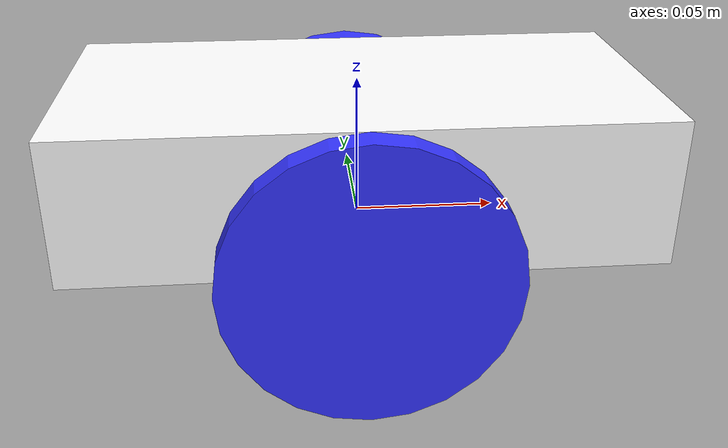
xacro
<?xml version="1.0"?>
<robot xmlns:xacro="http://www.ros.org/wiki/xacro" name="robot">
    <xacro:arg name="use_ros2_control" default="true" />
    <xacro:arg name="sim_mode" default="false" />

    <xacro:include filename="robot_core.xacro" />
    <xacro:include filename="ros2_control.xacro" />
</robot>

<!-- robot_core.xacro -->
<robot xmlns:xacro="http://www.ros.org/wiki/xacro">
    <xacro:include filename="materials.xacro" />
    <xacro:include filename="inertial_macros.xacro" />

    <link name="base_link">
    </link>

    <!-- BASE -->
    <joint name="base_to_chassis" type="fixed">
        <parent link="base_link" />
        <child link="chassis" />
        <origin xyz="-0.1 0 0" rpy="0 0 0" />
    </joint>

    <!-- CHASSIS -->
    <link name="chassis">
        <visual>
            <origin xyz="0.1 0 0.025" rpy="0 0 0" />
            <geometry>
                <box size="0.2 0.1 0.05" />
            </geometry>
            <material name="white" />
        </visual>
        <collision>
            <origin xyz="0.1 0 0.025" rpy="0 0 0" />
            <geometry>
                <box size="0.2 0.1 0.05" />
            </geometry>
        </collision>
        <xacro:inertial_box mass="0.5" x="0.2" y="0.1" z="0.05">
            <origin xyz="0.1 0 0.025" rpy="0 0 0" />
        </xacro:inertial_box>
    </link>

    <!-- LEFT WHEEL -->
    <joint name="left_wheel_joint" type="continuous">
        <parent link="base_link" />
        <child link="left_wheel" />
        <origin xyz="0 0.05 0" rpy="${-pi/2} 0 0" />
        <axis xyz="0 0 1" />
    </joint>
    <link name="left_wheel">
        <visual>
            <geometry>
                <cylinder radius="0.05" length="0.02" />
            </geometry>
            <material name="blue" />
        </visual>
        <collision>
            <geometry>
                <cylinder radius="0.05" length="0.02" />
            </geometry>
        </collision>
        <xacro:inertial_cylinder mass="0.1" radius="0.05" length="0.02">
            <origin xyz="0 0 0" rpy="0 0 0" />
        </xacro:inertial_cylinder>
    </link>
    <!-- RIGHT WHEEL -->
    <joint name="right_wheel_joint" type="continuous">
        <parent link="base_link" />
        <child link="right_wheel" />
        <origin xyz="0 -0.05 0" rpy="${pi/2} 0 0" />
        <axis xyz="0 0 -1" />
    </joint>
    <link name="right_wheel">
        <visual>
            <geometry>
                <cylinder radius="0.05" length="0.02" />
            </geometry>
            <material name="blue" />
        </visual>
        <collision>
            <geometry>
                <cylinder radius="0.05" length="0.02" />
            </geometry>
        </collision>
        <xacro:inertial_cylinder mass="0.1" radius="0.05" length="0.02">
            <origin xyz="0 0 0" rpy="0 0 0" />
        </xacro:inertial_cylinder>
    </link>

    <!-- CASTER WHEELS -->
    <joint name="front_caster_wheel_joint" type="fixed">
        <parent link="chassis" />
        <child link="front_caster_wheel" />
        <origin xyz="0.18 0 0" rpy="0 0 0" />
    </joint>
    <link name="front_caster_wheel">
        <visual>
            <geometry>
                <sphere radius="0.0125" />
            </geometry>
            <material name="black" />
        </visual>
        <collision>
            <geometry>
                <sphere radius="0.0125" />
            </geometry>
        </collision>
        <xacro:inertial_sphere mass="0.05" radius="0.0125">
            <origin xyz="0 0 0" rpy="0 0 0" />
        </xacro:inertial_sphere>
    </link>
    <joint name="rear_caster_wheel_joint" type="fixed">
        <parent link="chassis" />
        <child link="rear_caster_wheel" />
        <origin xyz="0.02 0 0" rpy="0 0 0" />
    </joint>
    <link name="rear_caster_wheel">
        <visual>
            <geometry>
                <sphere radius="0.0125" />
            </geometry>
            <material name="black" />
        </visual>
        <collision>
            <geometry>
                <sphere radius="0.0125" />
            </geometry>
        </collision>
        <xacro:inertial_sphere mass="0.05" radius="0.0125">
            <origin xyz="0 0 0" rpy="0 0 0" />
        </xacro:inertial_sphere>
    </link>
    <gazebo reference="front_caster_wheel">
        <mu1 value="0.001" />
        <mu2 value="0.001" />
    </gazebo>
    <gazebo reference="rear_caster_wheel">
        <mu1 value="0.001" />
        <mu2 value="0.001" />
    </gazebo>
</robot>

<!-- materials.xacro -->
<robot xmlns:xacro="http://www.ros.org/wiki/xacro">
    <material name="white">
        <color rgba="1.0 1.0 1.0 1.0" />
    </material>
    <material name="black">
        <color rgba="0.0 0.0 0.0 1.0" />
    </material>
    <material name="orange">
        <color rgba="1.0 0.3 0.1 1.0" />
    </material>
    <material name="blue">
        <color rgba="0.2 0.2 1.0 1.0" />
    </material>
</robot>

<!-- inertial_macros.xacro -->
<robot xmlns:xacro="http://www.ros.org/wiki/xacro">
    <!-- Source:
    https://github.com/joshnewans/articubot_one/blob/d5aa5e9bc9039073c0d8fd7fe426e170be79c087/description/inertial_macros.xacro -->

    <!-- Specify some standard inertial calculations
    https://en.wikipedia.org/wiki/List_of_moments_of_inertia -->
    <!-- These make use of xacro's mathematical functionality -->

    <xacro:macro name="inertial_sphere" params="mass radius *origin">
        <inertial>
            <xacro:insert_block name="origin" />
            <mass value="${mass}" />
            <inertia ixx="${(2/5) * mass * (radius*radius)}" ixy="0.0" ixz="0.0"
                iyy="${(2/5) * mass * (radius*radius)}" iyz="0.0"
                izz="${(2/5) * mass * (radius*radius)}" />
        </inertial>
    </xacro:macro>

    <xacro:macro name="inertial_box" params="mass x y z *origin">
        <inertial>
            <xacro:insert_block name="origin" />
            <mass value="${mass}" />
            <inertia ixx="${(1/12) * mass * (y*y+z*z)}" ixy="0.0" ixz="0.0"
                iyy="${(1/12) * mass * (x*x+z*z)}" iyz="0.0"
                izz="${(1/12) * mass * (x*x+y*y)}" />
        </inertial>
    </xacro:macro>

    <xacro:macro name="inertial_cylinder" params="mass length radius *origin">
        <inertial>
            <xacro:insert_block name="origin" />
            <mass value="${mass}" />
            <inertia ixx="${(1/12) * mass * (3*radius*radius + length*length)}" ixy="0.0" ixz="0.0"
                iyy="${(1/12) * mass * (3*radius*radius + length*length)}" iyz="0.0"
                izz="${(1/2) * mass * (radius*radius)}" />
        </inertial>
    </xacro:macro>
</robot>
